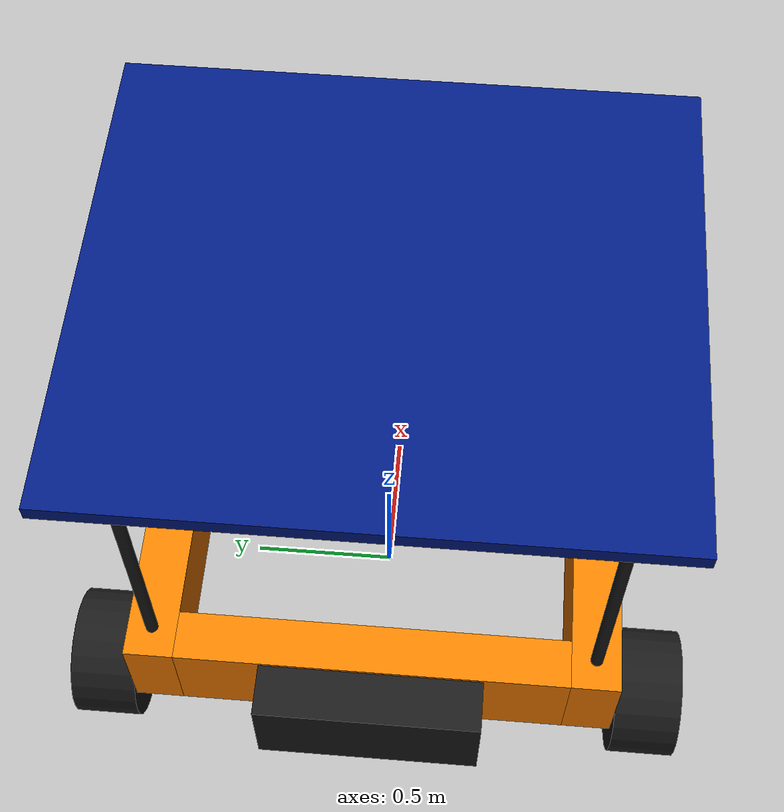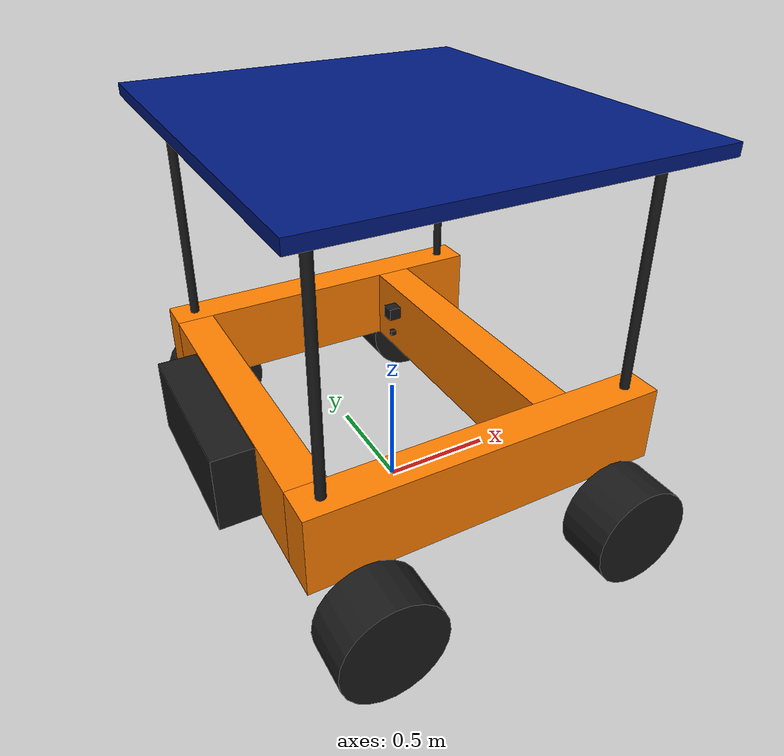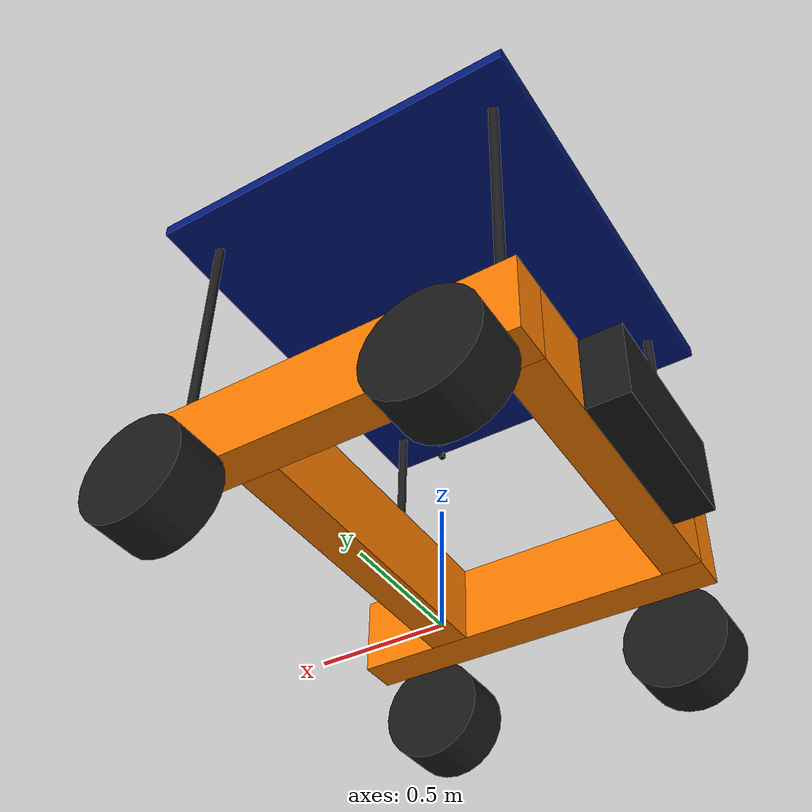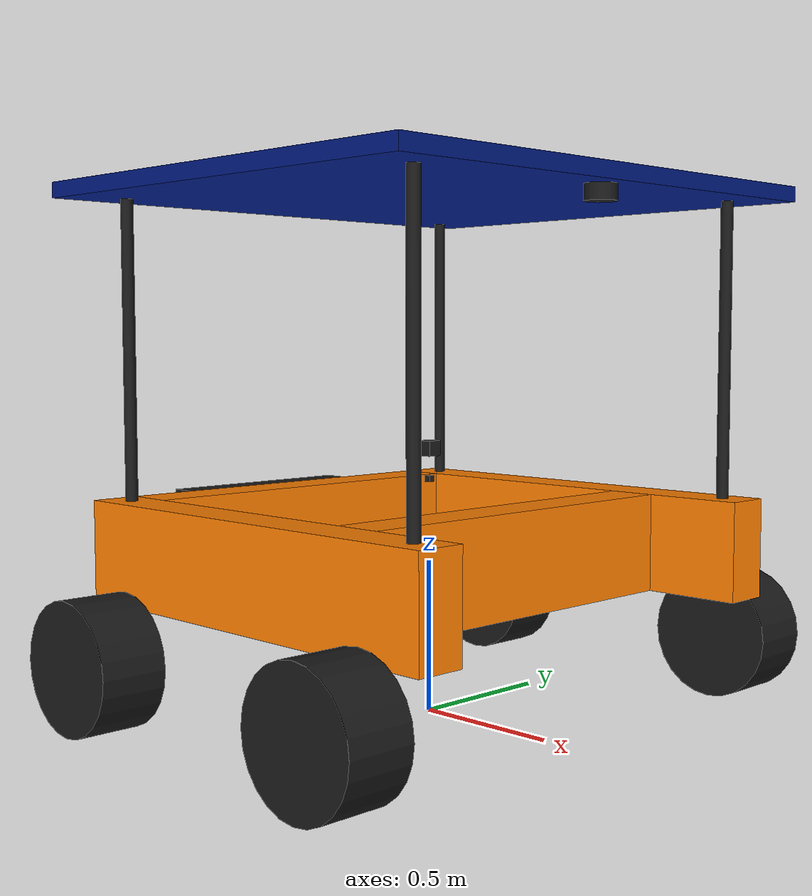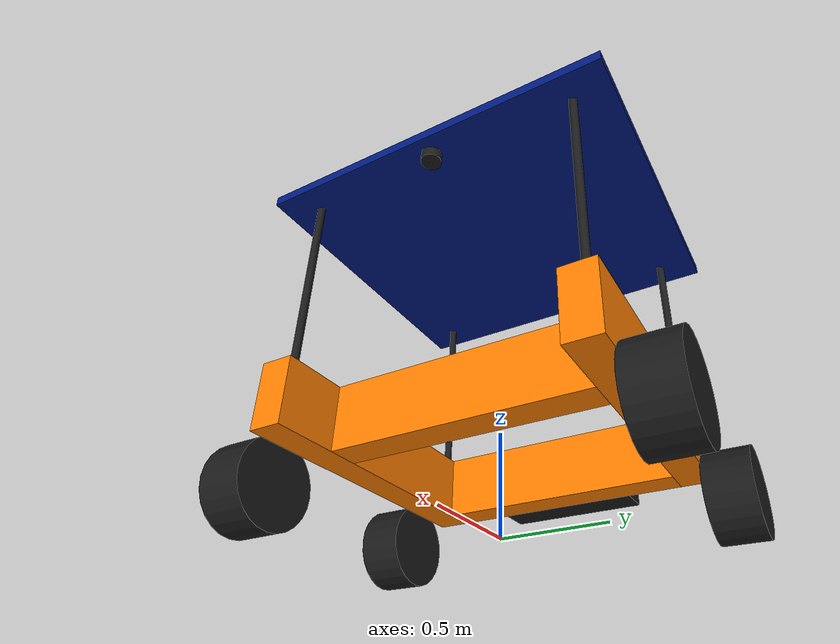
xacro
<?xml version="1.0"?>
<robot xmlns:xacro="http://www.ros.org/wiki/xacro" name="agro_robot">

  <xacro:property name="wheel_radius" value="0.215"/>
  <xacro:property name="wheel_width"  value="0.22"/>
  <xacro:property name="track_width"  value="1.85"/>
  <xacro:property name="wheelbase"    value="1.10"/>

  <xacro:property name="chassis_len"  value="1.52"/>
  <xacro:property name="chassis_wid"  value="1.74"/>
  <xacro:property name="chassis_h"    value="0.49"/>
  <xacro:property name="ground_clearance" value="0.16"/>

  <xacro:property name="rail_height" value="0.33"/>
  <xacro:property name="rail_width"  value="0.16"/>
  <xacro:property name="gap_width"   value="1.27"/>
  <xacro:property name="rail_offset" value="${(gap_width/2) + (rail_width/2)}"/>

  <xacro:property name="solar_elevation" value="1.0"/>
  <xacro:property name="solar_len" value="1.60"/>
  <xacro:property name="solar_wid" value="1.80"/>

  <material name="orange"> <color rgba="1.0 0.5 0.0 1"/> </material>
  <material name="black">  <color rgba="0.1 0.1 0.1 1"/> </material>
  <material name="solar_blue"> <color rgba="0.0 0.1 0.5 1"/> </material>

  <link name="base_footprint"/>

  <link name="base_link">
    <visual>
      <origin xyz="0 0 0" rpy="0 0 0"/>
      <geometry> <box size="0.01 0.01 0.01"/> </geometry>
      <material name="black"/>
    </visual>
  </link>

  <joint name="base_footprint_joint" type="fixed">
    <parent link="base_footprint"/>
    <child link="base_link"/>
    <origin xyz="0 0 ${wheel_radius}" rpy="0 0 0"/>
  </joint>

  <joint name="chassis_joint" type="fixed">
    <parent link="base_link"/>
    <child link="chassis_link"/>
    <origin xyz="0 0 ${ground_clearance}" rpy="0 0 0"/>
  </joint>

  <link name="chassis_link">
    <inertial>
      <mass value="1.0"/>
      <inertia ixx="0.01" ixy="0" ixz="0" iyy="0.01" iyz="0" izz="0.01"/>
    </inertial>
  </link>

  <link name="left_rail">
    <visual>
      <geometry> <box size="${chassis_len} ${rail_width} ${rail_height}"/> </geometry>
      <material name="orange"/>
    </visual>
    <collision>
      <geometry> <box size="${chassis_len} ${rail_width} ${rail_height}"/> </geometry>
    </collision>
    <inertial>
      <mass value="50.0"/>
      <inertia ixx="5.0" ixy="0" ixz="0" iyy="5.0" iyz="0" izz="5.0"/>
    </inertial>
  </link>

  <joint name="left_rail_joint" type="fixed">
    <parent link="chassis_link"/>
    <child link="left_rail"/>
    <origin xyz="0 ${rail_offset} ${rail_height/2}" rpy="0 0 0"/>
  </joint>

  <link name="right_rail">
    <visual>
      <geometry> <box size="${chassis_len} ${rail_width} ${rail_height}"/> </geometry>
      <material name="orange"/>
    </visual>
    <collision>
      <geometry> <box size="${chassis_len} ${rail_width} ${rail_height}"/> </geometry>
    </collision>
    <inertial>
      <mass value="50.0"/>
      <inertia ixx="5.0" ixy="0" ixz="0" iyy="5.0" iyz="0" izz="5.0"/>
    </inertial>
  </link>

  <joint name="right_rail_joint" type="fixed">
    <parent link="chassis_link"/>
    <child link="right_rail"/>
    <origin xyz="0 -${rail_offset} ${rail_height/2}" rpy="0 0 0"/>
  </joint>

  <link name="front_rail">
    <visual>
      <geometry> <box size="${rail_width} ${gap_width} ${rail_height}"/> </geometry>
      <material name="orange"/>
    </visual>
    <collision>
      <geometry> <box size="${rail_width} ${gap_width} ${rail_height}"/> </geometry>
    </collision>
    <inertial>
      <mass value="20.0"/>
      <inertia ixx="2.0" ixy="0" ixz="0" iyy="2.0" iyz="0" izz="2.0"/>
    </inertial>
  </link>

  <joint name="front_rail_joint" type="fixed">
    <parent link="chassis_link"/>
    <child link="front_rail"/>
    <origin xyz="${(chassis_len/2) - (rail_width/2) - 0.33} 0 ${rail_height/2}" rpy="0 0 0"/>
  </joint>

  <link name="rear_rail">
    <visual>
      <geometry> <box size="${rail_width} ${gap_width} ${rail_height}"/> </geometry>
      <material name="orange"/>
    </visual>
    <collision>
      <geometry> <box size="${rail_width} ${gap_width} ${rail_height}"/> </geometry>
    </collision>
    <inertial>
      <mass value="20.0"/>
      <inertia ixx="2.0" ixy="0" ixz="0" iyy="2.0" iyz="0" izz="2.0"/>
    </inertial>
  </link>

  <joint name="rear_rail_joint" type="fixed">
    <parent link="chassis_link"/>
    <child link="rear_rail"/>
    <origin xyz="-${(chassis_len/2) - (rail_width/2)} 0 ${rail_height/2}" rpy="0 0 0"/>
  </joint>

  <link name="rear_cabin">
    <visual>
      <geometry> <box size="0.72 0.25 0.32"/> </geometry>
      <material name="black"/>
    </visual>
    <collision>
      <geometry> <box size="0.72 0.25 0.32"/> </geometry>
    </collision>
    <inertial>
      <mass value="30.0"/>
      <inertia ixx="2.0" ixy="0" ixz="0" iyy="2.0" iyz="0" izz="2.0"/>
    </inertial>
  </link>

  <joint name="cabin_joint" type="fixed">
    <parent link="chassis_link"/>
    <child link="rear_cabin"/>
    <origin xyz="-0.8 0 ${0.32/2}" rpy="0 0 ${pi/2}"/>
  </joint>

  <xacro:macro name="solar_support" params="prefix parent x y">
    <link name="${prefix}_support">
      <visual>
        <geometry> <cylinder radius="0.02" length="${solar_elevation}"/> </geometry>
        <material name="black"/>
      </visual>
      <collision>
        <geometry> <cylinder radius="0.02" length="${solar_elevation}"/> </geometry>
      </collision>
      <inertial>
        <mass value="1.0"/>
        <inertia ixx="0.01" ixy="0" ixz="0" iyy="0.01" iyz="0" izz="0.01"/>
      </inertial>
    </link>
    <joint name="${prefix}_support_joint" type="fixed">
      <parent link="${parent}"/>
      <child link="${prefix}_support"/>
      <origin xyz="${x} 0 ${solar_elevation/2 + rail_height/2}" rpy="0 0 0"/>
    </joint>
  </xacro:macro>

  <xacro:solar_support prefix="fl" parent="left_rail"  x="${chassis_len/2 - 0.1}" y="0"/>
  <xacro:solar_support prefix="bl" parent="left_rail"  x="-${chassis_len/2 - 0.1}" y="0"/>
  <xacro:solar_support prefix="fr" parent="right_rail" x="${chassis_len/2 - 0.1}" y="0"/>
  <xacro:solar_support prefix="br" parent="right_rail" x="-${chassis_len/2 - 0.1}" y="0"/>

  <link name="solar_panel">
    <visual>
      <geometry> <box size="${solar_len} ${solar_wid} 0.05"/> </geometry>
      <material name="solar_blue"/>
    </visual>
    <collision>
      <geometry> <box size="${solar_len} ${solar_wid} 0.05"/> </geometry>
    </collision>
    <inertial>
      <mass value="20.0"/>
      <inertia ixx="2.0" ixy="0" ixz="0" iyy="2.0" iyz="0" izz="2.0"/>
    </inertial>
  </link>

  <joint name="solar_joint" type="fixed">
    <parent link="chassis_link"/>
    <child link="solar_panel"/>
    <origin xyz="0 0 ${rail_height + solar_elevation}" rpy="0 0 0"/>
  </joint>

  <xacro:macro name="wheel" params="prefix x y">
    <link name="${prefix}_wheel">
      <visual>
        <origin xyz="0 0 0" rpy="${pi/2} 0 0"/>
        <geometry> <cylinder radius="${wheel_radius}" length="${wheel_width}"/> </geometry>
        <material name="black"/>
      </visual>
      <collision>
        <origin xyz="0 0 0" rpy="${pi/2} 0 0"/>
        <geometry> <cylinder radius="${wheel_radius}" length="${wheel_width}"/> </geometry>
      </collision>
      <inertial>
        <mass value="10.0"/>
        <!-- cylinder: ixx=iyy=(1/12)*m*(3r²+h²), izz=(1/2)*m*r² -->
        <inertia ixx="0.156" ixy="0" ixz="0" iyy="0.156" iyz="0" izz="0.231"/>
      </inertial>
    </link>

    <gazebo reference="${prefix}_wheel">
      <mu>1.5</mu>
      <mu2>1.5</mu2>
      <fdir1>1 0 0</fdir1>
      <slip1>0.0</slip1>
      <slip2>0.0</slip2>
      <minDepth>0.001</minDepth>
      <kp>1e6</kp>
      <kd>1.0</kd>
    </gazebo>

    <joint name="${prefix}_wheel_joint" type="continuous">
      <parent link="base_link"/>
      <child link="${prefix}_wheel"/>
      <origin xyz="${x} ${y} 0" rpy="0 0 0"/>
      <axis xyz="0 1 0"/>
      <limit effort="100.0" velocity="10.0"/>
      <dynamics damping="0.1" friction="0.1"/>
    </joint>
  </xacro:macro>

  <xacro:wheel prefix="front_left"  x="${wheelbase/2}"  y="${track_width/2}"/>
  <xacro:wheel prefix="front_right" x="${wheelbase/2}"  y="-${track_width/2}"/>
  <xacro:wheel prefix="back_left"   x="-${wheelbase/2}" y="${track_width/2}"/>
  <xacro:wheel prefix="back_right"  x="-${wheelbase/2}" y="-${track_width/2}"/>

  <link name="lidar_link">
    <visual>
      <geometry> <cylinder radius="0.05" length="0.05"/> </geometry>
      <material name="black"/>
    </visual>
  </link>

  <joint name="lidar_joint" type="fixed">
    <parent link="solar_panel"/>
    <child link="lidar_link"/>
    <origin xyz="${solar_len/2 - 0.1} 0 -0.05" rpy="0 0 0"/>
  </joint>

  <gazebo reference="lidar_link">
    <!-- gpu_lidar replaces ray; sensors system loaded at world level -->
    <sensor name="lidar" type="gpu_lidar">
      <pose>0 0 0 0 0 0</pose>
      <topic>scan</topic>
      <gz_frame_id>lidar_link</gz_frame_id>
      <update_rate>10</update_rate>
      <visualize>false</visualize>
      <lidar>
        <scan>
          <horizontal>
            <samples>360</samples>
            <min_angle>-3.14159</min_angle>
            <max_angle>3.14159</max_angle>
          </horizontal>
        </scan>
        <range>
          <min>0.4</min>
          <max>20.0</max>
        </range>
      </lidar>
    </sensor>
  </gazebo>

  <link name="gps_link">
    <visual>
      <geometry> <box size="0.05 0.05 0.05"/> </geometry>
      <material name="black"/>
    </visual>
    <inertial>
      <mass value="0.1"/>
      <inertia ixx="0.001" ixy="0" ixz="0" iyy="0.001" iyz="0" izz="0.001"/>
    </inertial>
  </link>

  <joint name="gps_joint" type="fixed">
    <parent link="chassis_link"/>
    <child link="gps_link"/>
    <origin xyz="0 0 0.5" rpy="0 0 0"/>
  </joint>

  <gazebo reference="gps_link">
    <sensor name="gps_sensor" type="navsat">
      <always_on>true</always_on>
      <update_rate>10.0</update_rate>
      <topic>gps</topic>
      <gz_frame_id>gps_link</gz_frame_id>
    </sensor>
  </gazebo>

  <link name="imu_link">
    <visual>
      <geometry> <box size="0.02 0.02 0.02"/> </geometry>
      <material name="black"/>
    </visual>
  </link>

  <joint name="imu_joint" type="fixed">
    <parent link="chassis_link"/>
    <child link="imu_link"/>
    <origin xyz="0 0 0.4" rpy="0 0 0"/>
  </joint>

  <gazebo reference="imu_link">
    <sensor name="imu_sensor" type="imu">
      <always_on>true</always_on>
      <update_rate>100</update_rate>
      <topic>imu</topic>
      <gz_frame_id>imu_link</gz_frame_id>
      <imu>
        <angular_velocity/>
        <linear_acceleration/>
      </imu>
    </sensor>
  </gazebo>

  <gazebo>
    <plugin filename="gz-sim-diff-drive-system"
            name="gz::sim::systems::DiffDrive">
      <!-- 4-wheel skid-steer: two left joints, two right joints -->
      <left_joint>front_left_wheel_joint</left_joint>
      <left_joint>back_left_wheel_joint</left_joint>
      <right_joint>front_right_wheel_joint</right_joint>
      <right_joint>back_right_wheel_joint</right_joint>

      <wheel_separation>${track_width}</wheel_separation>
      <wheel_radius>${wheel_radius}</wheel_radius>

      <max_linear_acceleration>0.43</max_linear_acceleration>
      <max_angular_acceleration>1.0</max_angular_acceleration>

      <topic>/cmd_vel</topic>
      <odom_topic>/odom</odom_topic>
      <tf_topic>/tf</tf_topic>

      <odom_publish_frequency>50</odom_publish_frequency>
      <frame_id>odom</frame_id>
      <child_frame_id>base_footprint</child_frame_id>
    </plugin>
  </gazebo>

  <gazebo>
    <plugin filename="gz-sim-joint-state-publisher-system"
            name="gz::sim::systems::JointStatePublisher">
      <topic>joint_states</topic>
      <joint_name>front_left_wheel_joint</joint_name>
      <joint_name>front_right_wheel_joint</joint_name>
      <joint_name>back_left_wheel_joint</joint_name>
      <joint_name>back_right_wheel_joint</joint_name>
    </plugin>
  </gazebo>

  <gazebo>
    <plugin filename="gz-sim-sensors-system"
            name="gz::sim::systems::Sensors">
      <render_engine>ogre2</render_engine>
    </plugin>
  </gazebo>

  <gazebo>
    <plugin filename="gz-sim-imu-system"
            name="gz::sim::systems::Imu"/>
  </gazebo>

  <gazebo>
    <plugin filename="gz-sim-navsat-system"
            name="gz::sim::systems::NavSat"/>
  </gazebo>

</robot>
